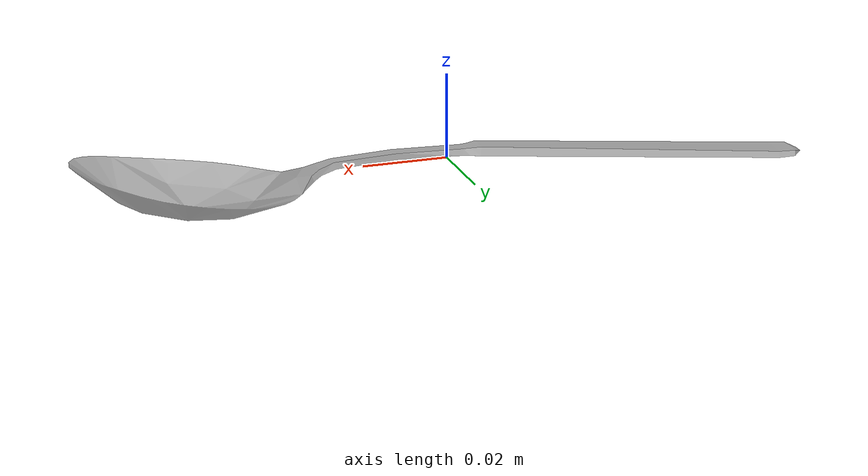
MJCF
<?xml version="1.0" ?>
<mujoco model="ladle">
	<compiler meshdir="ladle/meshes" texturedir="ladle/textures" angle="radian" autolimits="true" balanceinertia="true" boundmass="0.000001" boundinertia="0.000001"/>
	<default>
		<default class="visual">
			<geom contype="0" conaffinity="0"/>
		</default>
		<default class="collision">
			<geom rgba="1.0 0.0 0.0 0.0"/>
		</default>
	</default>
	<asset>
		<mesh name="Ladle" file="stl/Ladle.stl" scale="1.0 1.0 1.0"/>
		<mesh name="Ladle_001" file="stl/Ladle_001.stl" scale="1.0 1.0 1.0"/>
		<mesh name="Ladle_002" file="stl/Ladle_002.stl" scale="1.0 1.0 1.0"/>
		<mesh name="Ladle_003" file="stl/Ladle_003.stl" scale="1.0 1.0 1.0"/>
		<mesh name="Ladle_004" file="stl/Ladle_004.stl" scale="1.0 1.0 1.0"/>
		<mesh name="Ladle_005" file="stl/Ladle_005.stl" scale="1.0 1.0 1.0"/>
		<mesh name="Ladle_006" file="stl/Ladle_006.stl" scale="1.0 1.0 1.0"/>
		<material name="M_Ladle" rgba="0.660099983215332 0.660099983215332 0.660099983215332 1.0" emission="0.0"/>
	</asset>
	<worldbody>
		<body name="ladle" pos="0.0 0.0 0.0" quat="1.0 0.0 0.0 0.0">
			<inertial mass="0.027458030730485916" pos="0.03024863824248314 -1.5719871953479014e-05 -0.002112147631123662" quat="0.9999924302101135 0.0013719807611778378 0.003645502030849457 -0.00012974154378753155" diaginertia="1.6147810129041318e-06 9.447766205994412e-05 9.537346340948716e-05"/>
			<geom name="Ladle" type="mesh" pos="0.0 0.0 0.0" quat="1.0 0.0 0.0 0.0" mesh="Ladle" material="M_Ladle" class="visual"/>
			<geom name="Ladle_001" type="mesh" pos="0.0 0.0 0.0" quat="1.0 0.0 0.0 0.0" mesh="Ladle_001" class="collision"/>
			<geom name="Ladle_002" type="mesh" pos="0.0 0.0 0.0" quat="1.0 0.0 0.0 0.0" mesh="Ladle_002" class="collision"/>
			<geom name="Ladle_003" type="mesh" pos="0.0 0.0 0.0" quat="1.0 0.0 0.0 0.0" mesh="Ladle_003" class="collision"/>
			<geom name="Ladle_004" type="mesh" pos="0.0 0.0 0.0" quat="1.0 0.0 0.0 0.0" mesh="Ladle_004" class="collision"/>
			<geom name="Ladle_005" type="mesh" pos="0.0 0.0 0.0" quat="1.0 0.0 0.0 0.0" mesh="Ladle_005" class="collision"/>
			<geom name="Ladle_006" type="mesh" pos="0.0 0.0 0.0" quat="1.0 0.0 0.0 0.0" mesh="Ladle_006" class="collision"/>
		</body>
	</worldbody>
	<equality/>
</mujoco>
